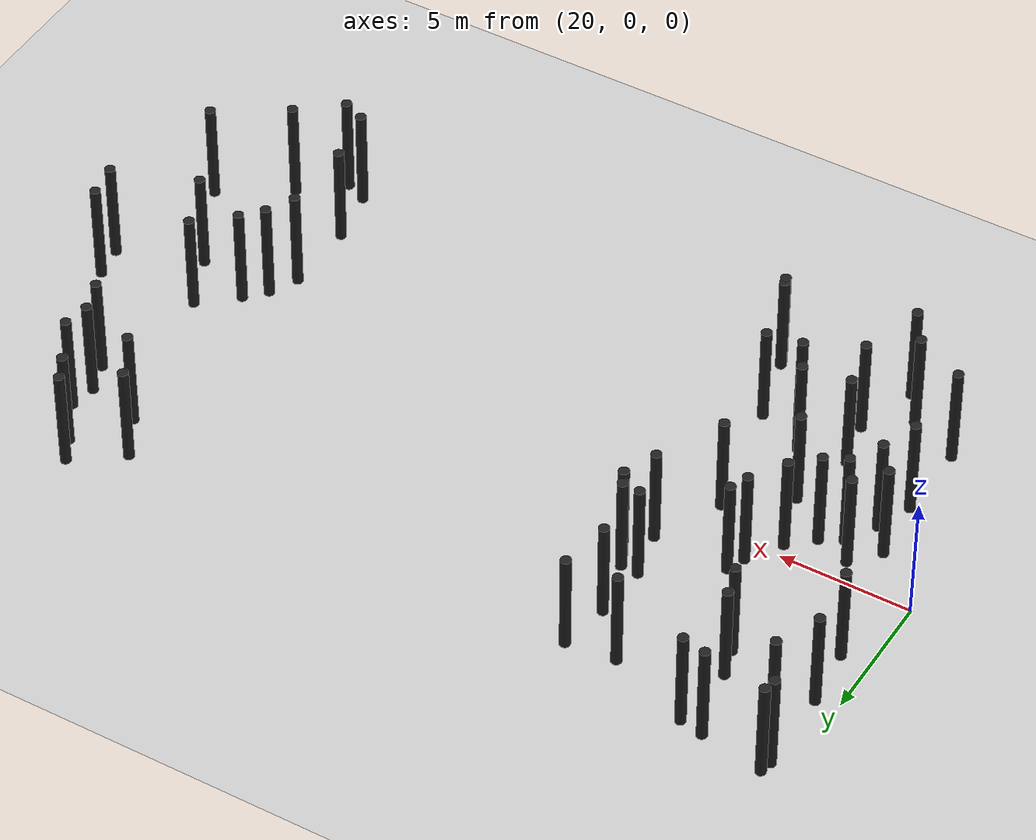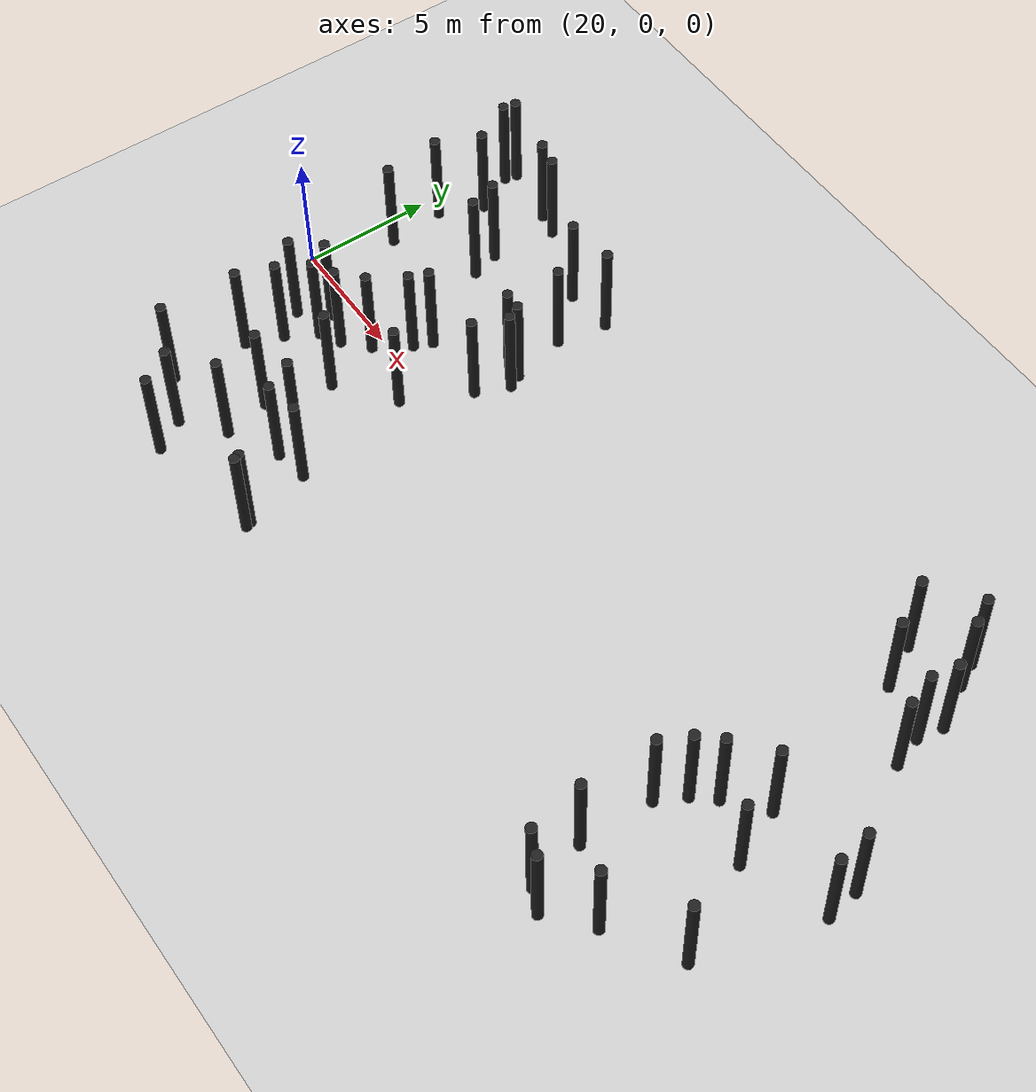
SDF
<sdf version="1.5">
 <world name="default">
  <model name="ground_plane">
   <static>1</static>
   <link name="link">
    <collision name="collision">
     <geometry><plane><normal>0 0 1</normal><size>200 200</size></plane></geometry>
     <surface><friction><ode><mu>100</mu><mu2>50</mu2></ode></friction></surface>
    </collision>
    <visual name="visual">
     <cast_shadows>0</cast_shadows>
     <geometry><plane><normal>0 0 1</normal><size>200 200</size></plane></geometry>
     <material>
      <script><uri>file://media/materials/scripts/gazebo.material</uri><name>Gazebo/Grey</name></script>
     </material>
    </visual>
   </link>
  </model>
  <model name="forest_clone_1">
   <pose>25.1887 -5.17476 -0.00465 0 -0 0</pose>
   <static>1</static>
   <link name="cylinder::link">
    <inertial>
     <mass>1</mass>
     <inertia><ixx>0.083</ixx><ixy>0</ixy><ixz>0</ixz><iyy>0.083</iyy><iyz>0</iyz><izz>0.083</izz></inertia>
    </inertial>
    <collision name="collision">
     <geometry><cylinder><radius>0.2</radius><length>4</length></cylinder></geometry>
    </collision>
    <visual name="visual">
     <geometry><cylinder><radius>0.2</radius><length>4</length></cylinder></geometry>
     <material>
      <script><uri>file://media/materials/scripts/gazebo.material</uri><name>Gazebo/Black</name></script>
     </material>
    </visual>
    <pose>0 0 2 0 -0 0</pose>
   </link>
  </model>
  <model name="forest_clone_6">
   <pose>29.6565 2.65853 0.003318 0 -0 0</pose>
   <static>1</static>
   <link name="cylinder::link">
    <inertial>
     <mass>1</mass>
     <inertia><ixx>0.083</ixx><ixy>0</ixy><ixz>0</ixz><iyy>0.083</iyy><iyz>0</iyz><izz>0.083</izz></inertia>
    </inertial>
    <collision name="collision">
     <geometry><cylinder><radius>0.2</radius><length>4</length></cylinder></geometry>
    </collision>
    <visual name="visual">
     <geometry><cylinder><radius>0.2</radius><length>4</length></cylinder></geometry>
     <material>
      <script><uri>file://media/materials/scripts/gazebo.material</uri><name>Gazebo/Black</name></script>
     </material>
    </visual>
    <pose>0 0 2 0 -0 0</pose>
   </link>
  </model>
  <model name="forest_clone_7">
   <pose>25.9618 0.771852 0.00141 0 -0 0</pose>
   <static>1</static>
   <link name="cylinder::link">
    <inertial>
     <mass>1</mass>
     <inertia><ixx>0.083</ixx><ixy>0</ixy><ixz>0</ixz><iyy>0.083</iyy><iyz>0</iyz><izz>0.083</izz></inertia>
    </inertial>
    <collision name="collision">
     <geometry><cylinder><radius>0.2</radius><length>4</length></cylinder></geometry>
    </collision>
    <visual name="visual">
     <geometry><cylinder><radius>0.2</radius><length>4</length></cylinder></geometry>
     <material>
      <script><uri>file://media/materials/scripts/gazebo.material</uri><name>Gazebo/Black</name></script>
     </material>
    </visual>
    <pose>0 0 2 0 -0 0</pose>
   </link>
  </model>
  <model name="forest_clone_8">
   <pose>26.959 -4.90211 -0.00242 0 -0 0</pose>
   <static>1</static>
   <link name="cylinder::link">
    <inertial>
     <mass>1</mass>
     <inertia><ixx>0.083</ixx><ixy>0</ixy><ixz>0</ixz><iyy>0.083</iyy><iyz>0</iyz><izz>0.083</izz></inertia>
    </inertial>
    <collision name="collision">
     <geometry><cylinder><radius>0.2</radius><length>4</length></cylinder></geometry>
    </collision>
    <visual name="visual">
     <geometry><cylinder><radius>0.2</radius><length>4</length></cylinder></geometry>
     <material>
      <script><uri>file://media/materials/scripts/gazebo.material</uri><name>Gazebo/Black</name></script>
     </material>
    </visual>
    <pose>0 0 2 0 -0 0</pose>
   </link>
  </model>
  <model name="forest_clone_10">
   <pose>23.9507 5.80226 0.000237 0 -0 0</pose>
   <static>1</static>
   <link name="cylinder::link">
    <inertial>
     <mass>1</mass>
     <inertia><ixx>0.083</ixx><ixy>0</ixy><ixz>0</ixz><iyy>0.083</iyy><iyz>0</iyz><izz>0.083</izz></inertia>
    </inertial>
    <collision name="collision">
     <geometry><cylinder><radius>0.2</radius><length>4</length></cylinder></geometry>
    </collision>
    <visual name="visual">
     <geometry><cylinder><radius>0.2</radius><length>4</length></cylinder></geometry>
     <material>
      <script><uri>file://media/materials/scripts/gazebo.material</uri><name>Gazebo/Black</name></script>
     </material>
    </visual>
    <pose>0 0 2 0 -0 0</pose>
   </link>
  </model>
  <model name="forest_clone_13">
   <pose>24.0765 -8.17114 -0.00101 0 -0 0</pose>
   <static>1</static>
   <link name="cylinder::link">
    <inertial>
     <mass>1</mass>
     <inertia><ixx>0.083</ixx><ixy>0</ixy><ixz>0</ixz><iyy>0.083</iyy><iyz>0</iyz><izz>0.083</izz></inertia>
    </inertial>
    <collision name="collision">
     <geometry><cylinder><radius>0.2</radius><length>4</length></cylinder></geometry>
    </collision>
    <visual name="visual">
     <geometry><cylinder><radius>0.2</radius><length>4</length></cylinder></geometry>
     <material>
      <script><uri>file://media/materials/scripts/gazebo.material</uri><name>Gazebo/Black</name></script>
     </material>
    </visual>
    <pose>0 0 2 0 -0 0</pose>
   </link>
  </model>
  <model name="forest_clone_20">
   <pose>24.8071 -9.32974 0.002086 0 -0 0</pose>
   <static>1</static>
   <link name="cylinder::link">
    <inertial>
     <mass>1</mass>
     <inertia><ixx>0.083</ixx><ixy>0</ixy><ixz>0</ixz><iyy>0.083</iyy><iyz>0</iyz><izz>0.083</izz></inertia>
    </inertial>
    <collision name="collision">
     <geometry><cylinder><radius>0.2</radius><length>4</length></cylinder></geometry>
    </collision>
    <visual name="visual">
     <geometry><cylinder><radius>0.2</radius><length>4</length></cylinder></geometry>
     <material>
      <script><uri>file://media/materials/scripts/gazebo.material</uri><name>Gazebo/Black</name></script>
     </material>
    </visual>
    <pose>0 0 2 0 -0 0</pose>
   </link>
  </model>
  <model name="forest_clone_22">
   <pose>27.3638 7.05879 0.004123 0 -0 0</pose>
   <static>1</static>
   <link name="cylinder::link">
    <inertial>
     <mass>1</mass>
     <inertia><ixx>0.083</ixx><ixy>0</ixy><ixz>0</ixz><iyy>0.083</iyy><iyz>0</iyz><izz>0.083</izz></inertia>
    </inertial>
    <collision name="collision">
     <geometry><cylinder><radius>0.2</radius><length>4</length></cylinder></geometry>
    </collision>
    <visual name="visual">
     <geometry><cylinder><radius>0.2</radius><length>4</length></cylinder></geometry>
     <material>
      <script><uri>file://media/materials/scripts/gazebo.material</uri><name>Gazebo/Black</name></script>
     </material>
    </visual>
    <pose>0 0 2 0 -0 0</pose>
   </link>
  </model>
  <model name="forest_clone_34">
   <pose>20.8621 8.94426 0.001625 0 -0 0</pose>
   <static>1</static>
   <link name="cylinder::link">
    <inertial>
     <mass>1</mass>
     <inertia><ixx>0.083</ixx><ixy>0</ixy><ixz>0</ixz><iyy>0.083</iyy><iyz>0</iyz><izz>0.083</izz></inertia>
    </inertial>
    <collision name="collision">
     <geometry><cylinder><radius>0.2</radius><length>4</length></cylinder></geometry>
    </collision>
    <visual name="visual">
     <geometry><cylinder><radius>0.2</radius><length>4</length></cylinder></geometry>
     <material>
      <script><uri>file://media/materials/scripts/gazebo.material</uri><name>Gazebo/Black</name></script>
     </material>
    </visual>
    <pose>0 0 2 0 -0 0</pose>
   </link>
  </model>
  <model name="forest_clone_38">
   <pose>22.1858 -7.27397 -0.002638 0 -0 0</pose>
   <static>1</static>
   <link name="cylinder::link">
    <inertial>
     <mass>1</mass>
     <inertia><ixx>0.083</ixx><ixy>0</ixy><ixz>0</ixz><iyy>0.083</iyy><iyz>0</iyz><izz>0.083</izz></inertia>
    </inertial>
    <collision name="collision">
     <geometry><cylinder><radius>0.2</radius><length>4</length></cylinder></geometry>
    </collision>
    <visual name="visual">
     <geometry><cylinder><radius>0.2</radius><length>4</length></cylinder></geometry>
     <material>
      <script><uri>file://media/materials/scripts/gazebo.material</uri><name>Gazebo/Black</name></script>
     </material>
    </visual>
    <pose>0 0 2 0 -0 0</pose>
   </link>
  </model>
  <model name="forest_clone_40">
   <pose>27.4993 -5.96731 -0.003087 0 -0 0</pose>
   <static>1</static>
   <link name="cylinder::link">
    <inertial>
     <mass>1</mass>
     <inertia><ixx>0.083</ixx><ixy>0</ixy><ixz>0</ixz><iyy>0.083</iyy><iyz>0</iyz><izz>0.083</izz></inertia>
    </inertial>
    <collision name="collision">
     <geometry><cylinder><radius>0.2</radius><length>4</length></cylinder></geometry>
    </collision>
    <visual name="visual">
     <geometry><cylinder><radius>0.2</radius><length>4</length></cylinder></geometry>
     <material>
      <script><uri>file://media/materials/scripts/gazebo.material</uri><name>Gazebo/Black</name></script>
     </material>
    </visual>
    <pose>0 0 2 0 -0 0</pose>
   </link>
  </model>
  <model name="forest_clone_42">
   <pose>28.7393 3.20337 0.001962 0 -0 0</pose>
   <static>1</static>
   <link name="cylinder::link">
    <inertial>
     <mass>1</mass>
     <inertia><ixx>0.083</ixx><ixy>0</ixy><ixz>0</ixz><iyy>0.083</iyy><iyz>0</iyz><izz>0.083</izz></inertia>
    </inertial>
    <collision name="collision">
     <geometry><cylinder><radius>0.2</radius><length>4</length></cylinder></geometry>
    </collision>
    <visual name="visual">
     <geometry><cylinder><radius>0.2</radius><length>4</length></cylinder></geometry>
     <material>
      <script><uri>file://media/materials/scripts/gazebo.material</uri><name>Gazebo/Black</name></script>
     </material>
    </visual>
    <pose>0 0 2 0 -0 0</pose>
   </link>
  </model>
  <model name="forest_clone_48">
   <pose>29.5681 -8.54686 0.004427 0 -0 0</pose>
   <static>1</static>
   <link name="cylinder::link">
    <inertial>
     <mass>1</mass>
     <inertia><ixx>0.083</ixx><ixy>0</ixy><ixz>0</ixz><iyy>0.083</iyy><iyz>0</iyz><izz>0.083</izz></inertia>
    </inertial>
    <collision name="collision">
     <geometry><cylinder><radius>0.2</radius><length>4</length></cylinder></geometry>
    </collision>
    <visual name="visual">
     <geometry><cylinder><radius>0.2</radius><length>4</length></cylinder></geometry>
     <material>
      <script><uri>file://media/materials/scripts/gazebo.material</uri><name>Gazebo/Black</name></script>
     </material>
    </visual>
    <pose>0 0 2 0 -0 0</pose>
   </link>
  </model>
  <model name="forest_clone_57">
   <pose>29.1216 1.39802 -0.000764 0 -0 0</pose>
   <static>1</static>
   <link name="cylinder::link">
    <inertial>
     <mass>1</mass>
     <inertia><ixx>0.083</ixx><ixy>0</ixy><ixz>0</ixz><iyy>0.083</iyy><iyz>0</iyz><izz>0.083</izz></inertia>
    </inertial>
    <collision name="collision">
     <geometry><cylinder><radius>0.2</radius><length>4</length></cylinder></geometry>
    </collision>
    <visual name="visual">
     <geometry><cylinder><radius>0.2</radius><length>4</length></cylinder></geometry>
     <material>
      <script><uri>file://media/materials/scripts/gazebo.material</uri><name>Gazebo/Black</name></script>
     </material>
    </visual>
    <pose>0 0 2 0 -0 0</pose>
   </link>
  </model>
  <model name="forest_clone_61">
   <pose>27.8974 -1.0978 0.003534 0 -0 0</pose>
   <static>1</static>
   <link name="cylinder::link">
    <inertial>
     <mass>1</mass>
     <inertia><ixx>0.083</ixx><ixy>0</ixy><ixz>0</ixz><iyy>0.083</iyy><iyz>0</iyz><izz>0.083</izz></inertia>
    </inertial>
    <collision name="collision">
     <geometry><cylinder><radius>0.2</radius><length>4</length></cylinder></geometry>
    </collision>
    <visual name="visual">
     <geometry><cylinder><radius>0.2</radius><length>4</length></cylinder></geometry>
     <material>
      <script><uri>file://media/materials/scripts/gazebo.material</uri><name>Gazebo/Black</name></script>
     </material>
    </visual>
    <pose>0 0 2 0 -0 0</pose>
   </link>
  </model>
  <model name="forest_clone_63">
   <pose>22.7885 -2.92564 0.004431 0 -0 0</pose>
   <static>1</static>
   <link name="cylinder::link">
    <inertial>
     <mass>1</mass>
     <inertia><ixx>0.083</ixx><ixy>0</ixy><ixz>0</ixz><iyy>0.083</iyy><iyz>0</iyz><izz>0.083</izz></inertia>
    </inertial>
    <collision name="collision">
     <geometry><cylinder><radius>0.2</radius><length>4</length></cylinder></geometry>
    </collision>
    <visual name="visual">
     <geometry><cylinder><radius>0.2</radius><length>4</length></cylinder></geometry>
     <material>
      <script><uri>file://media/materials/scripts/gazebo.material</uri><name>Gazebo/Black</name></script>
     </material>
    </visual>
    <pose>0 0 2 0 -0 0</pose>
   </link>
  </model>
  <model name="forest_clone_64">
   <pose>25.5612 -6.95518 0.002557 0 -0 0</pose>
   <static>1</static>
   <link name="cylinder::link">
    <inertial>
     <mass>1</mass>
     <inertia><ixx>0.083</ixx><ixy>0</ixy><ixz>0</ixz><iyy>0.083</iyy><iyz>0</iyz><izz>0.083</izz></inertia>
    </inertial>
    <collision name="collision">
     <geometry><cylinder><radius>0.2</radius><length>4</length></cylinder></geometry>
    </collision>
    <visual name="visual">
     <geometry><cylinder><radius>0.2</radius><length>4</length></cylinder></geometry>
     <material>
      <script><uri>file://media/materials/scripts/gazebo.material</uri><name>Gazebo/Black</name></script>
     </material>
    </visual>
    <pose>0 0 2 0 -0 0</pose>
   </link>
  </model>
  <model name="forest_clone_75">
   <pose>20.8164 5.29225 -0.004538 0 -0 0</pose>
   <static>1</static>
   <link name="cylinder::link">
    <inertial>
     <mass>1</mass>
     <inertia><ixx>0.083</ixx><ixy>0</ixy><ixz>0</ixz><iyy>0.083</iyy><iyz>0</iyz><izz>0.083</izz></inertia>
    </inertial>
    <collision name="collision">
     <geometry><cylinder><radius>0.2</radius><length>4</length></cylinder></geometry>
    </collision>
    <visual name="visual">
     <geometry><cylinder><radius>0.2</radius><length>4</length></cylinder></geometry>
     <material>
      <script><uri>file://media/materials/scripts/gazebo.material</uri><name>Gazebo/Black</name></script>
     </material>
    </visual>
    <pose>0 0 2 0 -0 0</pose>
   </link>
  </model>
  <model name="forest_clone_76">
   <pose>24.2542 -1.3385 -0.000452 0 -0 0</pose>
   <static>1</static>
   <link name="cylinder::link">
    <inertial>
     <mass>1</mass>
     <inertia><ixx>0.083</ixx><ixy>0</ixy><ixz>0</ixz><iyy>0.083</iyy><iyz>0</iyz><izz>0.083</izz></inertia>
    </inertial>
    <collision name="collision">
     <geometry><cylinder><radius>0.2</radius><length>4</length></cylinder></geometry>
    </collision>
    <visual name="visual">
     <geometry><cylinder><radius>0.2</radius><length>4</length></cylinder></geometry>
     <material>
      <script><uri>file://media/materials/scripts/gazebo.material</uri><name>Gazebo/Black</name></script>
     </material>
    </visual>
    <pose>0 0 2 0 -0 0</pose>
   </link>
  </model>
  <model name="forest_clone_77">
   <pose>22.0446 -1.90703 -0.004941 0 -0 0</pose>
   <static>1</static>
   <link name="cylinder::link">
    <inertial>
     <mass>1</mass>
     <inertia><ixx>0.083</ixx><ixy>0</ixy><ixz>0</ixz><iyy>0.083</iyy><iyz>0</iyz><izz>0.083</izz></inertia>
    </inertial>
    <collision name="collision">
     <geometry><cylinder><radius>0.2</radius><length>4</length></cylinder></geometry>
    </collision>
    <visual name="visual">
     <geometry><cylinder><radius>0.2</radius><length>4</length></cylinder></geometry>
     <material>
      <script><uri>file://media/materials/scripts/gazebo.material</uri><name>Gazebo/Black</name></script>
     </material>
    </visual>
    <pose>0 0 2 0 -0 0</pose>
   </link>
  </model>
  <model name="forest_clone_84">
   <pose>21.0426 3.05437 0.00421 0 -0 0</pose>
   <static>1</static>
   <link name="cylinder::link">
    <inertial>
     <mass>1</mass>
     <inertia><ixx>0.083</ixx><ixy>0</ixy><ixz>0</ixz><iyy>0.083</iyy><iyz>0</iyz><izz>0.083</izz></inertia>
    </inertial>
    <collision name="collision">
     <geometry><cylinder><radius>0.2</radius><length>4</length></cylinder></geometry>
    </collision>
    <visual name="visual">
     <geometry><cylinder><radius>0.2</radius><length>4</length></cylinder></geometry>
     <material>
      <script><uri>file://media/materials/scripts/gazebo.material</uri><name>Gazebo/Black</name></script>
     </material>
    </visual>
    <pose>0 0 2 0 -0 0</pose>
   </link>
  </model>
  <model name="forest_clone_91">
   <pose>20.759 8.46463 -0.00149 0 -0 0</pose>
   <static>1</static>
   <link name="cylinder::link">
    <inertial>
     <mass>1</mass>
     <inertia><ixx>0.083</ixx><ixy>0</ixy><ixz>0</ixz><iyy>0.083</iyy><iyz>0</iyz><izz>0.083</izz></inertia>
    </inertial>
    <collision name="collision">
     <geometry><cylinder><radius>0.2</radius><length>4</length></cylinder></geometry>
    </collision>
    <visual name="visual">
     <geometry><cylinder><radius>0.2</radius><length>4</length></cylinder></geometry>
     <material>
      <script><uri>file://media/materials/scripts/gazebo.material</uri><name>Gazebo/Black</name></script>
     </material>
    </visual>
    <pose>0 0 2 0 -0 0</pose>
   </link>
  </model>
  <model name="forest_clone_93">
   <pose>24.2628 4.71926 -0.000182 0 -0 0</pose>
   <static>1</static>
   <link name="cylinder::link">
    <inertial>
     <mass>1</mass>
     <inertia><ixx>0.083</ixx><ixy>0</ixy><ixz>0</ixz><iyy>0.083</iyy><iyz>0</iyz><izz>0.083</izz></inertia>
    </inertial>
    <collision name="collision">
     <geometry><cylinder><radius>0.2</radius><length>4</length></cylinder></geometry>
    </collision>
    <visual name="visual">
     <geometry><cylinder><radius>0.2</radius><length>4</length></cylinder></geometry>
     <material>
      <script><uri>file://media/materials/scripts/gazebo.material</uri><name>Gazebo/Black</name></script>
     </material>
    </visual>
    <pose>0 0 2 0 -0 0</pose>
   </link>
  </model>
  <model name="forest_clone_94">
   <pose>29.2322 7.24944 0.004163 0 -0 0</pose>
   <static>1</static>
   <link name="cylinder::link">
    <inertial>
     <mass>1</mass>
     <inertia><ixx>0.083</ixx><ixy>0</ixy><ixz>0</ixz><iyy>0.083</iyy><iyz>0</iyz><izz>0.083</izz></inertia>
    </inertial>
    <collision name="collision">
     <geometry><cylinder><radius>0.2</radius><length>4</length></cylinder></geometry>
    </collision>
    <visual name="visual">
     <geometry><cylinder><radius>0.2</radius><length>4</length></cylinder></geometry>
     <material>
      <script><uri>file://media/materials/scripts/gazebo.material</uri><name>Gazebo/Black</name></script>
     </material>
    </visual>
    <pose>0 0 2 0 -0 0</pose>
   </link>
  </model>
  <model name="forest_clone_96">
   <pose>26.2496 1.4666 -0.002933 0 -0 0</pose>
   <static>1</static>
   <link name="cylinder::link">
    <inertial>
     <mass>1</mass>
     <inertia><ixx>0.083</ixx><ixy>0</ixy><ixz>0</ixz><iyy>0.083</iyy><iyz>0</iyz><izz>0.083</izz></inertia>
    </inertial>
    <collision name="collision">
     <geometry><cylinder><radius>0.2</radius><length>4</length></cylinder></geometry>
    </collision>
    <visual name="visual">
     <geometry><cylinder><radius>0.2</radius><length>4</length></cylinder></geometry>
     <material>
      <script><uri>file://media/materials/scripts/gazebo.material</uri><name>Gazebo/Black</name></script>
     </material>
    </visual>
    <pose>0 0 2 0 -0 0</pose>
   </link>
  </model>
  <model name="forest_clone_97">
   <pose>29.4106 3.16898 0.001883 0 -0 0</pose>
   <static>1</static>
   <link name="cylinder::link">
    <inertial>
     <mass>1</mass>
     <inertia><ixx>0.083</ixx><ixy>0</ixy><ixz>0</ixz><iyy>0.083</iyy><iyz>0</iyz><izz>0.083</izz></inertia>
    </inertial>
    <collision name="collision">
     <geometry><cylinder><radius>0.2</radius><length>4</length></cylinder></geometry>
    </collision>
    <visual name="visual">
     <geometry><cylinder><radius>0.2</radius><length>4</length></cylinder></geometry>
     <material>
      <script><uri>file://media/materials/scripts/gazebo.material</uri><name>Gazebo/Black</name></script>
     </material>
    </visual>
    <pose>0 0 2 0 -0 0</pose>
   </link>
  </model>
  <model name="forest_clone_98">
   <pose>23.4495 -1.7635 0.000297 0 -0 0</pose>
   <static>1</static>
   <link name="cylinder::link">
    <inertial>
     <mass>1</mass>
     <inertia><ixx>0.083</ixx><ixy>0</ixy><ixz>0</ixz><iyy>0.083</iyy><iyz>0</iyz><izz>0.083</izz></inertia>
    </inertial>
    <collision name="collision">
     <geometry><cylinder><radius>0.2</radius><length>4</length></cylinder></geometry>
    </collision>
    <visual name="visual">
     <geometry><cylinder><radius>0.2</radius><length>4</length></cylinder></geometry>
     <material>
      <script><uri>file://media/materials/scripts/gazebo.material</uri><name>Gazebo/Black</name></script>
     </material>
    </visual>
    <pose>0 0 2 0 -0 0</pose>
   </link>
  </model>
  <model name="forest_clone_99">
   <pose>25.8154 -2.70572 -0.001738 0 -0 0</pose>
   <static>1</static>
   <link name="cylinder::link">
    <inertial>
     <mass>1</mass>
     <inertia><ixx>0.083</ixx><ixy>0</ixy><ixz>0</ixz><iyy>0.083</iyy><iyz>0</iyz><izz>0.083</izz></inertia>
    </inertial>
    <collision name="collision">
     <geometry><cylinder><radius>0.2</radius><length>4</length></cylinder></geometry>
    </collision>
    <visual name="visual">
     <geometry><cylinder><radius>0.2</radius><length>4</length></cylinder></geometry>
     <material>
      <script><uri>file://media/materials/scripts/gazebo.material</uri><name>Gazebo/Black</name></script>
     </material>
    </visual>
    <pose>0 0 2 0 -0 0</pose>
   </link>
  </model>
  <model name="forest_clone_101">
   <pose>29.4924 -8.3374 -0.002603 0 -0 0</pose>
   <static>1</static>
   <link name="cylinder::link">
    <inertial>
     <mass>1</mass>
     <inertia><ixx>0.083</ixx><ixy>0</ixy><ixz>0</ixz><iyy>0.083</iyy><iyz>0</iyz><izz>0.083</izz></inertia>
    </inertial>
    <collision name="collision">
     <geometry><cylinder><radius>0.2</radius><length>4</length></cylinder></geometry>
    </collision>
    <visual name="visual">
     <geometry><cylinder><radius>0.2</radius><length>4</length></cylinder></geometry>
     <material>
      <script><uri>file://media/materials/scripts/gazebo.material</uri><name>Gazebo/Black</name></script>
     </material>
    </visual>
    <pose>0 0 2 0 -0 0</pose>
   </link>
  </model>
  <model name="forest_clone_104">
   <pose>23.2939 8.51941 0.002037 0 -0 0</pose>
   <static>1</static>
   <link name="cylinder::link">
    <inertial>
     <mass>1</mass>
     <inertia><ixx>0.083</ixx><ixy>0</ixy><ixz>0</ixz><iyy>0.083</iyy><iyz>0</iyz><izz>0.083</izz></inertia>
    </inertial>
    <collision name="collision">
     <geometry><cylinder><radius>0.2</radius><length>4</length></cylinder></geometry>
    </collision>
    <visual name="visual">
     <geometry><cylinder><radius>0.2</radius><length>4</length></cylinder></geometry>
     <material>
      <script><uri>file://media/materials/scripts/gazebo.material</uri><name>Gazebo/Black</name></script>
     </material>
    </visual>
    <pose>0 0 2 0 -0 0</pose>
   </link>
  </model>
  <model name="forest_clone_106">
   <pose>28.8864 5.3204 -0.00272 0 -0 0</pose>
   <static>1</static>
   <link name="cylinder::link">
    <inertial>
     <mass>1</mass>
     <inertia><ixx>0.083</ixx><ixy>0</ixy><ixz>0</ixz><iyy>0.083</iyy><iyz>0</iyz><izz>0.083</izz></inertia>
    </inertial>
    <collision name="collision">
     <geometry><cylinder><radius>0.2</radius><length>4</length></cylinder></geometry>
    </collision>
    <visual name="visual">
     <geometry><cylinder><radius>0.2</radius><length>4</length></cylinder></geometry>
     <material>
      <script><uri>file://media/materials/scripts/gazebo.material</uri><name>Gazebo/Black</name></script>
     </material>
    </visual>
    <pose>0 0 2 0 -0 0</pose>
   </link>
  </model>
  <model name="forest_clone_108">
   <pose>22.2672 -4.29 0.00035 0 -0 0</pose>
   <static>1</static>
   <link name="cylinder::link">
    <inertial>
     <mass>1</mass>
     <inertia><ixx>0.083</ixx><ixy>0</ixy><ixz>0</ixz><iyy>0.083</iyy><iyz>0</iyz><izz>0.083</izz></inertia>
    </inertial>
    <collision name="collision">
     <geometry><cylinder><radius>0.2</radius><length>4</length></cylinder></geometry>
    </collision>
    <visual name="visual">
     <geometry><cylinder><radius>0.2</radius><length>4</length></cylinder></geometry>
     <material>
      <script><uri>file://media/materials/scripts/gazebo.material</uri><name>Gazebo/Black</name></script>
     </material>
    </visual>
    <pose>0 0 2 0 -0 0</pose>
   </link>
  </model>
  <model name="forest_clone_114">
   <pose>22.9205 -0.895008 -0.001982 0 -0 0</pose>
   <static>1</static>
   <link name="cylinder::link">
    <inertial>
     <mass>1</mass>
     <inertia><ixx>0.083</ixx><ixy>0</ixy><ixz>0</ixz><iyy>0.083</iyy><iyz>0</iyz><izz>0.083</izz></inertia>
    </inertial>
    <collision name="collision">
     <geometry><cylinder><radius>0.2</radius><length>4</length></cylinder></geometry>
    </collision>
    <visual name="visual">
     <geometry><cylinder><radius>0.2</radius><length>4</length></cylinder></geometry>
     <material>
      <script><uri>file://media/materials/scripts/gazebo.material</uri><name>Gazebo/Black</name></script>
     </material>
    </visual>
    <pose>0 0 2 0 -0 0</pose>
   </link>
  </model>
  <model name="forest_clone_116">
   <pose>21.5507 6.92745 0.001023 0 -0 0</pose>
   <static>1</static>
   <link name="cylinder::link">
    <inertial>
     <mass>1</mass>
     <inertia><ixx>0.083</ixx><ixy>0</ixy><ixz>0</ixz><iyy>0.083</iyy><iyz>0</iyz><izz>0.083</izz></inertia>
    </inertial>
    <collision name="collision">
     <geometry><cylinder><radius>0.2</radius><length>4</length></cylinder></geometry>
    </collision>
    <visual name="visual">
     <geometry><cylinder><radius>0.2</radius><length>4</length></cylinder></geometry>
     <material>
      <script><uri>file://media/materials/scripts/gazebo.material</uri><name>Gazebo/Black</name></script>
     </material>
    </visual>
    <pose>0 0 2 0 -0 0</pose>
   </link>
  </model>
  <model name="forest_clone_122">
   <pose>28.8099 -5.75971 -0.00202 0 -0 0</pose>
   <static>1</static>
   <link name="cylinder::link">
    <inertial>
     <mass>1</mass>
     <inertia><ixx>0.083</ixx><ixy>0</ixy><ixz>0</ixz><iyy>0.083</iyy><iyz>0</iyz><izz>0.083</izz></inertia>
    </inertial>
    <collision name="collision">
     <geometry><cylinder><radius>0.2</radius><length>4</length></cylinder></geometry>
    </collision>
    <visual name="visual">
     <geometry><cylinder><radius>0.2</radius><length>4</length></cylinder></geometry>
     <material>
      <script><uri>file://media/materials/scripts/gazebo.material</uri><name>Gazebo/Black</name></script>
     </material>
    </visual>
    <pose>0 0 2 0 -0 0</pose>
   </link>
  </model>
  <model name="forest_clone_127">
   <pose>24.2058 8.32876 0.003109 0 -0 0</pose>
   <static>1</static>
   <link name="cylinder::link">
    <inertial>
     <mass>1</mass>
     <inertia><ixx>0.083</ixx><ixy>0</ixy><ixz>0</ixz><iyy>0.083</iyy><iyz>0</iyz><izz>0.083</izz></inertia>
    </inertial>
    <collision name="collision">
     <geometry><cylinder><radius>0.2</radius><length>4</length></cylinder></geometry>
    </collision>
    <visual name="visual">
     <geometry><cylinder><radius>0.2</radius><length>4</length></cylinder></geometry>
     <material>
      <script><uri>file://media/materials/scripts/gazebo.material</uri><name>Gazebo/Black</name></script>
     </material>
    </visual>
    <pose>0 0 2 0 -0 0</pose>
   </link>
  </model>
  <model name="forest_clone_149">
   <pose>25.136 -0.522928 -0.004936 0 -0 0</pose>
   <static>1</static>
   <link name="cylinder::link">
    <inertial>
     <mass>1</mass>
     <inertia><ixx>0.083</ixx><ixy>0</ixy><ixz>0</ixz><iyy>0.083</iyy><iyz>0</iyz><izz>0.083</izz></inertia>
    </inertial>
    <collision name="collision">
     <geometry><cylinder><radius>0.2</radius><length>4</length></cylinder></geometry>
    </collision>
    <visual name="visual">
     <geometry><cylinder><radius>0.2</radius><length>4</length></cylinder></geometry>
     <material>
      <script><uri>file://media/materials/scripts/gazebo.material</uri><name>Gazebo/Black</name></script>
     </material>
    </visual>
    <pose>0 0 2 0 -0 0</pose>
   </link>
  </model>
  <model name="forest_2_clone_2">
   <pose>46.5004 -6.19998 0.002842 0 -0 0</pose>
   <static>1</static>
   <link name="cylinder::link">
    <inertial>
     <mass>1</mass>
     <inertia><ixx>0.083</ixx><ixy>0</ixy><ixz>0</ixz><iyy>0.083</iyy><iyz>0</iyz><izz>0.083</izz></inertia>
    </inertial>
    <collision name="collision">
     <geometry><cylinder><radius>0.2</radius><length>4</length></cylinder></geometry>
    </collision>
    <visual name="visual">
     <geometry><cylinder><radius>0.2</radius><length>4</length></cylinder></geometry>
     <material>
      <script><uri>file://media/materials/scripts/gazebo.material</uri><name>Gazebo/Black</name></script>
     </material>
    </visual>
    <pose>0 0 2 0 -0 0</pose>
   </link>
  </model>
  <model name="forest_2_clone_6">
   <pose>49.9857 -2.45849 -0.00228 0 -0 0</pose>
   <static>1</static>
   <link name="cylinder::link">
    <inertial>
     <mass>1</mass>
     <inertia><ixx>0.083</ixx><ixy>0</ixy><ixz>0</ixz><iyy>0.083</iyy><iyz>0</iyz><izz>0.083</izz></inertia>
    </inertial>
    <collision name="collision">
     <geometry><cylinder><radius>0.2</radius><length>4</length></cylinder></geometry>
    </collision>
    <visual name="visual">
     <geometry><cylinder><radius>0.2</radius><length>4</length></cylinder></geometry>
     <material>
      <script><uri>file://media/materials/scripts/gazebo.material</uri><name>Gazebo/Black</name></script>
     </material>
    </visual>
    <pose>0 0 2 0 -0 0</pose>
   </link>
  </model>
  <model name="forest_2_clone_9">
   <pose>49.684 5.13769 -0.002368 0 -0 0</pose>
   <static>1</static>
   <link name="cylinder::link">
    <inertial>
     <mass>1</mass>
     <inertia><ixx>0.083</ixx><ixy>0</ixy><ixz>0</ixz><iyy>0.083</iyy><iyz>0</iyz><izz>0.083</izz></inertia>
    </inertial>
    <collision name="collision">
     <geometry><cylinder><radius>0.2</radius><length>4</length></cylinder></geometry>
    </collision>
    <visual name="visual">
     <geometry><cylinder><radius>0.2</radius><length>4</length></cylinder></geometry>
     <material>
      <script><uri>file://media/materials/scripts/gazebo.material</uri><name>Gazebo/Black</name></script>
     </material>
    </visual>
    <pose>0 0 2 0 -0 0</pose>
   </link>
  </model>
  <model name="forest_2_clone_12">
   <pose>51.7483 -5.82902 -0.002885 0 -0 0</pose>
   <static>1</static>
   <link name="cylinder::link">
    <inertial>
     <mass>1</mass>
     <inertia><ixx>0.083</ixx><ixy>0</ixy><ixz>0</ixz><iyy>0.083</iyy><iyz>0</iyz><izz>0.083</izz></inertia>
    </inertial>
    <collision name="collision">
     <geometry><cylinder><radius>0.2</radius><length>4</length></cylinder></geometry>
    </collision>
    <visual name="visual">
     <geometry><cylinder><radius>0.2</radius><length>4</length></cylinder></geometry>
     <material>
      <script><uri>file://media/materials/scripts/gazebo.material</uri><name>Gazebo/Black</name></script>
     </material>
    </visual>
    <pose>0 0 2 0 -0 0</pose>
   </link>
  </model>
  <model name="forest_2_clone_13">
   <pose>47.7151 -8.68442 -0.004156 0 -0 0</pose>
   <static>1</static>
   <link name="cylinder::link">
    <inertial>
     <mass>1</mass>
     <inertia><ixx>0.083</ixx><ixy>0</ixy><ixz>0</ixz><iyy>0.083</iyy><iyz>0</iyz><izz>0.083</izz></inertia>
    </inertial>
    <collision name="collision">
     <geometry><cylinder><radius>0.2</radius><length>4</length></cylinder></geometry>
    </collision>
    <visual name="visual">
     <geometry><cylinder><radius>0.2</radius><length>4</length></cylinder></geometry>
     <material>
      <script><uri>file://media/materials/scripts/gazebo.material</uri><name>Gazebo/Black</name></script>
     </material>
    </visual>
    <pose>0 0 2 0 -0 0</pose>
   </link>
  </model>
  <model name="forest_2_clone_17">
   <pose>48.5082 8.53889 -0.002243 0 -0 0</pose>
   <static>1</static>
   <link name="cylinder::link">
    <inertial>
     <mass>1</mass>
     <inertia><ixx>0.083</ixx><ixy>0</ixy><ixz>0</ixz><iyy>0.083</iyy><iyz>0</iyz><izz>0.083</izz></inertia>
    </inertial>
    <collision name="collision">
     <geometry><cylinder><radius>0.2</radius><length>4</length></cylinder></geometry>
    </collision>
    <visual name="visual">
     <geometry><cylinder><radius>0.2</radius><length>4</length></cylinder></geometry>
     <material>
      <script><uri>file://media/materials/scripts/gazebo.material</uri><name>Gazebo/Black</name></script>
     </material>
    </visual>
    <pose>0 0 2 0 -0 0</pose>
   </link>
  </model>
  <model name="forest_2_clone_20">
   <pose>53.0515 -1.29681 -0.00264 0 -0 0</pose>
   <static>1</static>
   <link name="cylinder::link">
    <inertial>
     <mass>1</mass>
     <inertia><ixx>0.083</ixx><ixy>0</ixy><ixz>0</ixz><iyy>0.083</iyy><iyz>0</iyz><izz>0.083</izz></inertia>
    </inertial>
    <collision name="collision">
     <geometry><cylinder><radius>0.2</radius><length>4</length></cylinder></geometry>
    </collision>
    <visual name="visual">
     <geometry><cylinder><radius>0.2</radius><length>4</length></cylinder></geometry>
     <material>
      <script><uri>file://media/materials/scripts/gazebo.material</uri><name>Gazebo/Black</name></script>
     </material>
    </visual>
    <pose>0 0 2 0 -0 0</pose>
   </link>
  </model>
  <model name="forest_2_clone_26">
   <pose>50.0675 3.99366 -0.004629 0 -0 0</pose>
   <static>1</static>
   <link name="cylinder::link">
    <inertial>
     <mass>1</mass>
     <inertia><ixx>0.083</ixx><ixy>0</ixy><ixz>0</ixz><iyy>0.083</iyy><iyz>0</iyz><izz>0.083</izz></inertia>
    </inertial>
    <collision name="collision">
     <geometry><cylinder><radius>0.2</radius><length>4</length></cylinder></geometry>
    </collision>
    <visual name="visual">
     <geometry><cylinder><radius>0.2</radius><length>4</length></cylinder></geometry>
     <material>
      <script><uri>file://media/materials/scripts/gazebo.material</uri><name>Gazebo/Black</name></script>
     </material>
    </visual>
    <pose>0 0 2 0 -0 0</pose>
   </link>
  </model>
  <model name="forest_2_clone_28">
   <pose>49.2313 -7.41083 -0.001374 0 -0 0</pose>
   <static>1</static>
   <link name="cylinder::link">
    <inertial>
     <mass>1</mass>
     <inertia><ixx>0.083</ixx><ixy>0</ixy><ixz>0</ixz><iyy>0.083</iyy><iyz>0</iyz><izz>0.083</izz></inertia>
    </inertial>
    <collision name="collision">
     <geometry><cylinder><radius>0.2</radius><length>4</length></cylinder></geometry>
    </collision>
    <visual name="visual">
     <geometry><cylinder><radius>0.2</radius><length>4</length></cylinder></geometry>
     <material>
      <script><uri>file://media/materials/scripts/gazebo.material</uri><name>Gazebo/Black</name></script>
     </material>
    </visual>
    <pose>0 0 2 0 -0 0</pose>
   </link>
  </model>
  <model name="forest_2_clone_31">
   <pose>46.8776 -8.30407 0.004581 0 -0 0</pose>
   <static>1</static>
   <link name="cylinder::link">
    <inertial>
     <mass>1</mass>
     <inertia><ixx>0.083</ixx><ixy>0</ixy><ixz>0</ixz><iyy>0.083</iyy><iyz>0</iyz><izz>0.083</izz></inertia>
    </inertial>
    <collision name="collision">
     <geometry><cylinder><radius>0.2</radius><length>4</length></cylinder></geometry>
    </collision>
    <visual name="visual">
     <geometry><cylinder><radius>0.2</radius><length>4</length></cylinder></geometry>
     <material>
      <script><uri>file://media/materials/scripts/gazebo.material</uri><name>Gazebo/Black</name></script>
     </material>
    </visual>
    <pose>0 0 2 0 -0 0</pose>
   </link>
  </model>
  <model name="forest_2_clone_36">
   <pose>46.5601 -3.36541 -0.001583 0 -0 0</pose>
   <static>1</static>
   <link name="cylinder::link">
    <inertial>
     <mass>1</mass>
     <inertia><ixx>0.083</ixx><ixy>0</ixy><ixz>0</ixz><iyy>0.083</iyy><iyz>0</iyz><izz>0.083</izz></inertia>
    </inertial>
    <collision name="collision">
     <geometry><cylinder><radius>0.2</radius><length>4</length></cylinder></geometry>
    </collision>
    <visual name="visual">
     <geometry><cylinder><radius>0.2</radius><length>4</length></cylinder></geometry>
     <material>
      <script><uri>file://media/materials/scripts/gazebo.material</uri><name>Gazebo/Black</name></script>
     </material>
    </visual>
    <pose>0 0 2 0 -0 0</pose>
   </link>
  </model>
  <model name="forest_2_clone_43">
   <pose>52.848 -0.055105 0.001963 0 -0 0</pose>
   <static>1</static>
   <link name="cylinder::link">
    <inertial>
     <mass>1</mass>
     <inertia><ixx>0.083</ixx><ixy>0</ixy><ixz>0</ixz><iyy>0.083</iyy><iyz>0</iyz><izz>0.083</izz></inertia>
    </inertial>
    <collision name="collision">
     <geometry><cylinder><radius>0.2</radius><length>4</length></cylinder></geometry>
    </collision>
    <visual name="visual">
     <geometry><cylinder><radius>0.2</radius><length>4</length></cylinder></geometry>
     <material>
      <script><uri>file://media/materials/scripts/gazebo.material</uri><name>Gazebo/Black</name></script>
     </material>
    </visual>
    <pose>0 0 2 0 -0 0</pose>
   </link>
  </model>
  <model name="forest_2_clone_44">
   <pose>46.7442 7.24554 -0.003627 0 -0 0</pose>
   <static>1</static>
   <link name="cylinder::link">
    <inertial>
     <mass>1</mass>
     <inertia><ixx>0.083</ixx><ixy>0</ixy><ixz>0</ixz><iyy>0.083</iyy><iyz>0</iyz><izz>0.083</izz></inertia>
    </inertial>
    <collision name="collision">
     <geometry><cylinder><radius>0.2</radius><length>4</length></cylinder></geometry>
    </collision>
    <visual name="visual">
     <geometry><cylinder><radius>0.2</radius><length>4</length></cylinder></geometry>
     <material>
      <script><uri>file://media/materials/scripts/gazebo.material</uri><name>Gazebo/Black</name></script>
     </material>
    </visual>
    <pose>0 0 2 0 -0 0</pose>
   </link>
  </model>
  <model name="forest_2_clone_45">
   <pose>47.7727 -1.56671 0.00499 0 -0 0</pose>
   <static>1</static>
   <link name="cylinder::link">
    <inertial>
     <mass>1</mass>
     <inertia><ixx>0.083</ixx><ixy>0</ixy><ixz>0</ixz><iyy>0.083</iyy><iyz>0</iyz><izz>0.083</izz></inertia>
    </inertial>
    <collision name="collision">
     <geometry><cylinder><radius>0.2</radius><length>4</length></cylinder></geometry>
    </collision>
    <visual name="visual">
     <geometry><cylinder><radius>0.2</radius><length>4</length></cylinder></geometry>
     <material>
      <script><uri>file://media/materials/scripts/gazebo.material</uri><name>Gazebo/Black</name></script>
     </material>
    </visual>
    <pose>0 0 2 0 -0 0</pose>
   </link>
  </model>
  <model name="forest_2_clone_47">
   <pose>49.1022 -0.421678 0.000168 0 -0 0</pose>
   <static>1</static>
   <link name="cylinder::link">
    <inertial>
     <mass>1</mass>
     <inertia><ixx>0.083</ixx><ixy>0</ixy><ixz>0</ixz><iyy>0.083</iyy><iyz>0</iyz><izz>0.083</izz></inertia>
    </inertial>
    <collision name="collision">
     <geometry><cylinder><radius>0.2</radius><length>4</length></cylinder></geometry>
    </collision>
    <visual name="visual">
     <geometry><cylinder><radius>0.2</radius><length>4</length></cylinder></geometry>
     <material>
      <script><uri>file://media/materials/scripts/gazebo.material</uri><name>Gazebo/Black</name></script>
     </material>
    </visual>
    <pose>0 0 2 0 -0 0</pose>
   </link>
  </model>
  <model name="forest_2_clone_57">
   <pose>47.1027 -2.30836 -0.002538 0 -0 0</pose>
   <static>1</static>
   <link name="cylinder::link">
    <inertial>
     <mass>1</mass>
     <inertia><ixx>0.083</ixx><ixy>0</ixy><ixz>0</ixz><iyy>0.083</iyy><iyz>0</iyz><izz>0.083</izz></inertia>
    </inertial>
    <collision name="collision">
     <geometry><cylinder><radius>0.2</radius><length>4</length></cylinder></geometry>
    </collision>
    <visual name="visual">
     <geometry><cylinder><radius>0.2</radius><length>4</length></cylinder></geometry>
     <material>
      <script><uri>file://media/materials/scripts/gazebo.material</uri><name>Gazebo/Black</name></script>
     </material>
    </visual>
    <pose>0 0 2 0 -0 0</pose>
   </link>
  </model>
  <model name="forest_2_clone_64">
   <pose>49.8682 6.13974 0.004604 0 -0 0</pose>
   <static>1</static>
   <link name="cylinder::link">
    <inertial>
     <mass>1</mass>
     <inertia><ixx>0.083</ixx><ixy>0</ixy><ixz>0</ixz><iyy>0.083</iyy><iyz>0</iyz><izz>0.083</izz></inertia>
    </inertial>
    <collision name="collision">
     <geometry><cylinder><radius>0.2</radius><length>4</length></cylinder></geometry>
    </collision>
    <visual name="visual">
     <geometry><cylinder><radius>0.2</radius><length>4</length></cylinder></geometry>
     <material>
      <script><uri>file://media/materials/scripts/gazebo.material</uri><name>Gazebo/Black</name></script>
     </material>
    </visual>
    <pose>0 0 2 0 -0 0</pose>
   </link>
  </model>
  <model name="forest_2_clone_65">
   <pose>48.9681 7.675 -0.003526 0 -0 0</pose>
   <static>1</static>
   <link name="cylinder::link">
    <inertial>
     <mass>1</mass>
     <inertia><ixx>0.083</ixx><ixy>0</ixy><ixz>0</ixz><iyy>0.083</iyy><iyz>0</iyz><izz>0.083</izz></inertia>
    </inertial>
    <collision name="collision">
     <geometry><cylinder><radius>0.2</radius><length>4</length></cylinder></geometry>
    </collision>
    <visual name="visual">
     <geometry><cylinder><radius>0.2</radius><length>4</length></cylinder></geometry>
     <material>
      <script><uri>file://media/materials/scripts/gazebo.material</uri><name>Gazebo/Black</name></script>
     </material>
    </visual>
    <pose>0 0 2 0 -0 0</pose>
   </link>
  </model>
  <model name="forest_2_clone_72">
   <pose>47.6054 5.6836 0.000833 0 -0 0</pose>
   <static>1</static>
   <link name="cylinder::link">
    <inertial>
     <mass>1</mass>
     <inertia><ixx>0.083</ixx><ixy>0</ixy><ixz>0</ixz><iyy>0.083</iyy><iyz>0</iyz><izz>0.083</izz></inertia>
    </inertial>
    <collision name="collision">
     <geometry><cylinder><radius>0.2</radius><length>4</length></cylinder></geometry>
    </collision>
    <visual name="visual">
     <geometry><cylinder><radius>0.2</radius><length>4</length></cylinder></geometry>
     <material>
      <script><uri>file://media/materials/scripts/gazebo.material</uri><name>Gazebo/Black</name></script>
     </material>
    </visual>
    <pose>0 0 2 0 -0 0</pose>
   </link>
  </model>
 </world>
</sdf>
